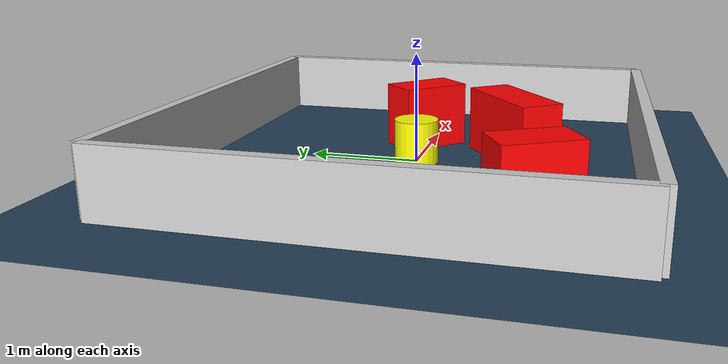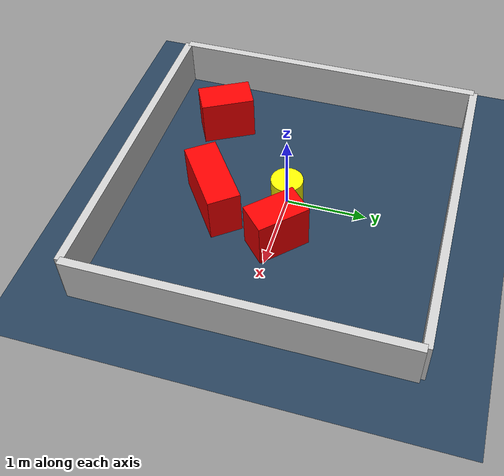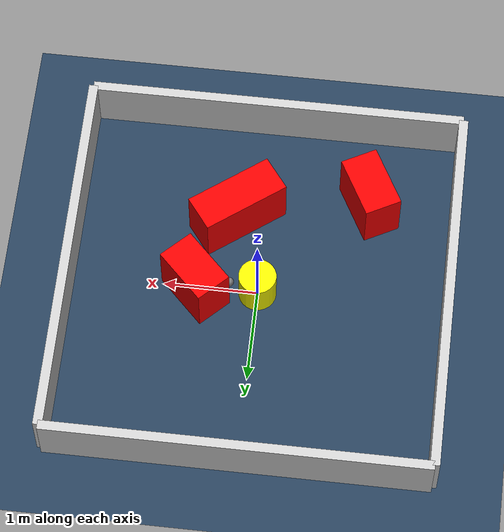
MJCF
<?xml version="1.0" ?>
<mujoco model="generated_environment">
  <option timestep="0.01" integrator="RK4" cone="elliptic"/>
  <default>
    <geom density="1"/>
  </default>
  <asset>
    <texture builtin="gradient" height="3072" rgb1="0.3 0.5 0.7" rgb2="0 0 0" type="skybox" width="512"/>
    <texture builtin="checker" height="300" mark="edge" markrgb="0.8 0.8 0.8" name="groundplane" rgb1="0.2 0.3 0.4" rgb2="0.1 0.2 0.3" type="2d" width="300"/>
    <material name="groundplane" reflectance="0.2" texrepeat="5 5" texture="groundplane" texuniform="true"/>
    <material name="robot" rgba="0.0 1.0 0.0 1"/>
  </asset>
  <worldbody>
    <light dir="0 0 -1" directional="true" pos="0 0 1.5"/>
    <geom condim="4" friction="1.0 0.005 0.001" material="groundplane" name="floor" size="0 0 0.05" type="plane"/>
    <body name="walls">
      <geom name="wall_1" condim="4" pos="-2.0 0.0 0.3" rgba="0.800000011920929 0.800000011920929 0.800000011920929 1.0" size="0.05 2.0 0.3" type="box"/>
      <geom name="wall_2" condim="4" pos="2.0 0.0 0.3" rgba="0.800000011920929 0.800000011920929 0.800000011920929 1.0" size="0.05 2.0 0.3" type="box"/>
      <geom name="wall_3" condim="4" pos="0.0 -2.0 0.3" rgba="0.800000011920929 0.800000011920929 0.800000011920929 1.0" size="2.0 0.05 0.3" type="box"/>
      <geom name="wall_4" condim="4" pos="0.0 2.0 0.3" rgba="0.800000011920929 0.800000011920929 0.800000011920929 1.0" size="2.0 0.05 0.3" type="box"/>
    </body>
    <body name="robot">
      <joint name="joint_x" type="slide" pos="0 0 0" axis="1 0 0"/>
      <joint name="joint_y" type="slide" pos="0 0 0" axis="0 1 0"/>
      <geom name="robot" type="sphere" pos="0.3 0.0 0.2" size="0.05" mass="5." friction="1.0 0.005 0.0001" condim="4" rgba="0.5 0.5 0.5 1.0"/>
      <site name="sensor_ball"/>
    </body>
    <body name="obstacle_movable_1">
      <geom name="obstacle_movable_1" condim="4" pos="0.0 0.0 0.2" euler="0 0 0.0" friction="1.0 0.005 0.001" rgba="1.0 1.0 0.0 1.0" size="0.2 0.2 0.0" type="cylinder" mass="0.1"/>
      <joint type="free"/>
    </body>
    <body name="obstacle_2_static">
      <geom name="obstacle_2_static" condim="4" pos="0.3067426817441776 -0.8511374822771698 0.3" euler="0 0 36.98065667817266" friction="1.0 0.005 0.001" rgba="1 0 0 1" size="0.48134130535490094 0.2 0.3" type="box"/>
    </body>
    <body name="obstacle_3_static">
      <geom name="obstacle_3_static" condim="4" pos="-1.0808851759686129 -1.147442491862662 0.3" euler="0 0 118.10440800090065" friction="1.0 0.005 0.001" rgba="1 0 0 1" size="0.338174707186992 0.2 0.3" type="box"/>
    </body>
    <body name="obstacle_4_static">
      <geom name="obstacle_4_static" condim="4" pos="0.6518081206163335 0.05269370562572129 0.3" euler="0 0 314.6394589063327" friction="1.0 0.005 0.001" rgba="1 0 0 1" size="0.32684936149579413 0.2 0.3" type="box"/>
    </body>
  </worldbody>
  <actuator>
    <motor name="actuator_x" joint="joint_x" gear="1" ctrlrange="-1 1"/>
    <motor name="actuator_y" joint="joint_y" gear="1" ctrlrange="-1 1"/>
  </actuator>
</mujoco>
